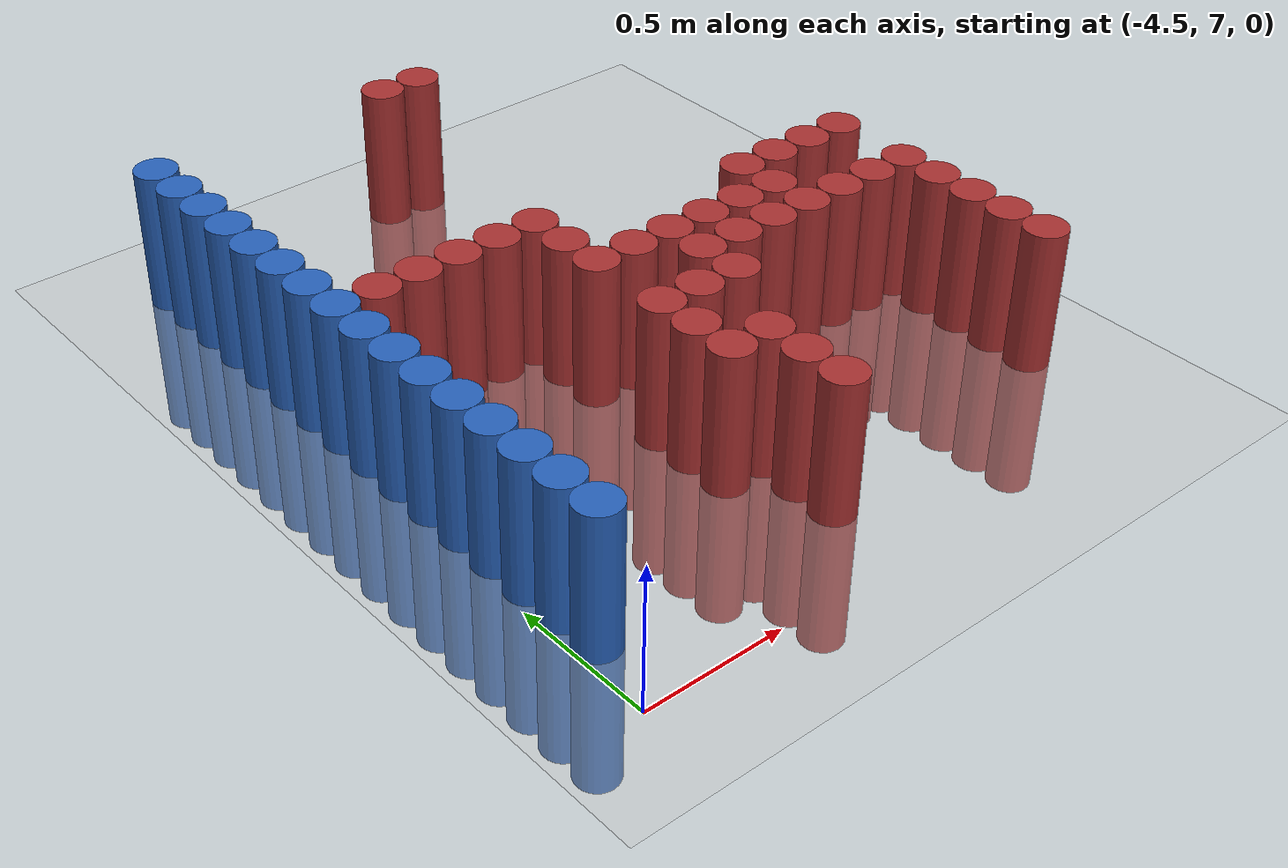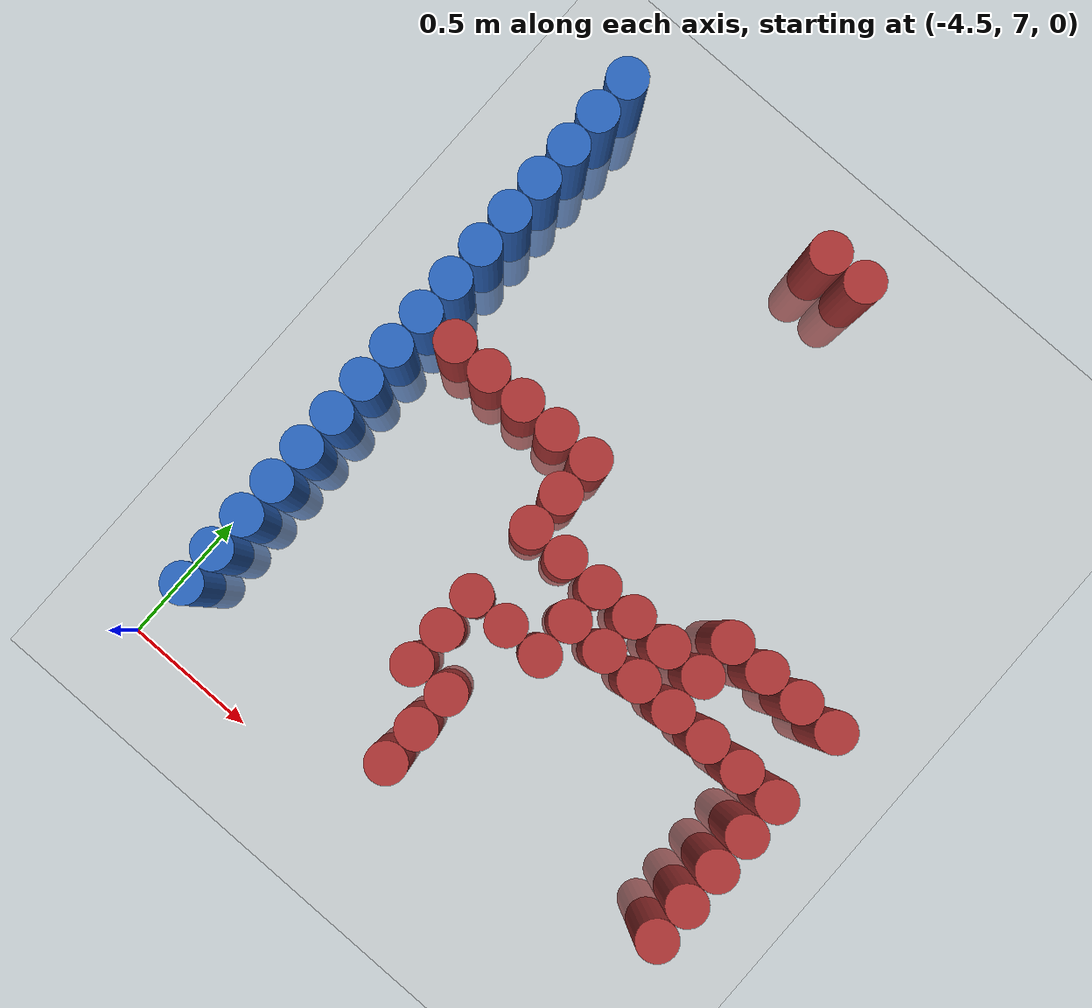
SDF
<sdf version="1.6">
 <world name="default">
  <model name="ground_plane">
   <static>1</static>
   <link name="link">
    <collision name="collision">
     <geometry><plane><normal>0 0 1</normal><size>100 100</size></plane></geometry>
     <surface><friction><ode><mu>100</mu><mu2>50</mu2></ode></friction></surface>
    </collision>
    <visual name="visual">
     <cast_shadows>0</cast_shadows>
     <geometry><plane><normal>0 0 1</normal><size>100 100</size></plane></geometry>
     <material>
      <script><uri>file://media/materials/scripts/gazebo.material</uri><name>Gazebo/Grey</name></script>
     </material>
    </visual>
   </link>
  </model>
  <model name="unit_cylinder_110">
   <static>1</static>
   <pose>-4.425000 7.275000 0.000000 0.000000 0.000000 0.000000</pose>
   <link name="link">
    <inertial>
     <mass>1</mass>
     <inertia><ixx>0.145833</ixx><ixy>0</ixy><ixz>0</ixz><iyy>0.145833</iyy><iyz>0</iyz><izz>0.125</izz></inertia>
    </inertial>
    <collision name="collision">
     <geometry><cylinder><radius>0.075000</radius><length>1</length></cylinder></geometry>
    </collision>
    <visual name="visual">
     <geometry><cylinder><radius>0.075000</radius><length>1</length></cylinder></geometry>
     <material>
      <ambient>0.152000 0.379000 0.720000 1</ambient>
      <diffuse>0.152000 0.379000 0.720000 1</diffuse>
     </material>
     <material>
      <script><name>Gazebo/Grey</name><uri>file://media/materials/scripts/gazebo.material</uri></script>
     </material>
    </visual>
   </link>
  </model>
  <model name="unit_cylinder_111">
   <static>1</static>
   <pose>-4.425000 7.425000 0.000000 0.000000 0.000000 0.000000</pose>
   <link name="link">
    <inertial>
     <mass>1</mass>
     <inertia><ixx>0.145833</ixx><ixy>0</ixy><ixz>0</ixz><iyy>0.145833</iyy><iyz>0</iyz><izz>0.125</izz></inertia>
    </inertial>
    <collision name="collision">
     <geometry><cylinder><radius>0.075000</radius><length>1</length></cylinder></geometry>
    </collision>
    <visual name="visual">
     <geometry><cylinder><radius>0.075000</radius><length>1</length></cylinder></geometry>
     <material>
      <ambient>0.152000 0.379000 0.720000 1</ambient>
      <diffuse>0.152000 0.379000 0.720000 1</diffuse>
     </material>
     <material>
      <script><name>Gazebo/Grey</name><uri>file://media/materials/scripts/gazebo.material</uri></script>
     </material>
    </visual>
   </link>
  </model>
  <model name="unit_cylinder_112">
   <static>1</static>
   <pose>-4.425000 7.575000 0.000000 0.000000 0.000000 0.000000</pose>
   <link name="link">
    <inertial>
     <mass>1</mass>
     <inertia><ixx>0.145833</ixx><ixy>0</ixy><ixz>0</ixz><iyy>0.145833</iyy><iyz>0</iyz><izz>0.125</izz></inertia>
    </inertial>
    <collision name="collision">
     <geometry><cylinder><radius>0.075000</radius><length>1</length></cylinder></geometry>
    </collision>
    <visual name="visual">
     <geometry><cylinder><radius>0.075000</radius><length>1</length></cylinder></geometry>
     <material>
      <ambient>0.152000 0.379000 0.720000 1</ambient>
      <diffuse>0.152000 0.379000 0.720000 1</diffuse>
     </material>
     <material>
      <script><name>Gazebo/Grey</name><uri>file://media/materials/scripts/gazebo.material</uri></script>
     </material>
    </visual>
   </link>
  </model>
  <model name="unit_cylinder_113">
   <static>1</static>
   <pose>-4.425000 7.725000 0.000000 0.000000 0.000000 0.000000</pose>
   <link name="link">
    <inertial>
     <mass>1</mass>
     <inertia><ixx>0.145833</ixx><ixy>0</ixy><ixz>0</ixz><iyy>0.145833</iyy><iyz>0</iyz><izz>0.125</izz></inertia>
    </inertial>
    <collision name="collision">
     <geometry><cylinder><radius>0.075000</radius><length>1</length></cylinder></geometry>
    </collision>
    <visual name="visual">
     <geometry><cylinder><radius>0.075000</radius><length>1</length></cylinder></geometry>
     <material>
      <ambient>0.152000 0.379000 0.720000 1</ambient>
      <diffuse>0.152000 0.379000 0.720000 1</diffuse>
     </material>
     <material>
      <script><name>Gazebo/Grey</name><uri>file://media/materials/scripts/gazebo.material</uri></script>
     </material>
    </visual>
   </link>
  </model>
  <model name="unit_cylinder_114">
   <static>1</static>
   <pose>-4.425000 7.875000 0.000000 0.000000 0.000000 0.000000</pose>
   <link name="link">
    <inertial>
     <mass>1</mass>
     <inertia><ixx>0.145833</ixx><ixy>0</ixy><ixz>0</ixz><iyy>0.145833</iyy><iyz>0</iyz><izz>0.125</izz></inertia>
    </inertial>
    <collision name="collision">
     <geometry><cylinder><radius>0.075000</radius><length>1</length></cylinder></geometry>
    </collision>
    <visual name="visual">
     <geometry><cylinder><radius>0.075000</radius><length>1</length></cylinder></geometry>
     <material>
      <ambient>0.152000 0.379000 0.720000 1</ambient>
      <diffuse>0.152000 0.379000 0.720000 1</diffuse>
     </material>
     <material>
      <script><name>Gazebo/Grey</name><uri>file://media/materials/scripts/gazebo.material</uri></script>
     </material>
    </visual>
   </link>
  </model>
  <model name="unit_cylinder_115">
   <static>1</static>
   <pose>-4.425000 8.025000 0.000000 0.000000 0.000000 0.000000</pose>
   <link name="link">
    <inertial>
     <mass>1</mass>
     <inertia><ixx>0.145833</ixx><ixy>0</ixy><ixz>0</ixz><iyy>0.145833</iyy><iyz>0</iyz><izz>0.125</izz></inertia>
    </inertial>
    <collision name="collision">
     <geometry><cylinder><radius>0.075000</radius><length>1</length></cylinder></geometry>
    </collision>
    <visual name="visual">
     <geometry><cylinder><radius>0.075000</radius><length>1</length></cylinder></geometry>
     <material>
      <ambient>0.152000 0.379000 0.720000 1</ambient>
      <diffuse>0.152000 0.379000 0.720000 1</diffuse>
     </material>
     <material>
      <script><name>Gazebo/Grey</name><uri>file://media/materials/scripts/gazebo.material</uri></script>
     </material>
    </visual>
   </link>
  </model>
  <model name="unit_cylinder_116">
   <static>1</static>
   <pose>-4.425000 8.175000 0.000000 0.000000 0.000000 0.000000</pose>
   <link name="link">
    <inertial>
     <mass>1</mass>
     <inertia><ixx>0.145833</ixx><ixy>0</ixy><ixz>0</ixz><iyy>0.145833</iyy><iyz>0</iyz><izz>0.125</izz></inertia>
    </inertial>
    <collision name="collision">
     <geometry><cylinder><radius>0.075000</radius><length>1</length></cylinder></geometry>
    </collision>
    <visual name="visual">
     <geometry><cylinder><radius>0.075000</radius><length>1</length></cylinder></geometry>
     <material>
      <ambient>0.152000 0.379000 0.720000 1</ambient>
      <diffuse>0.152000 0.379000 0.720000 1</diffuse>
     </material>
     <material>
      <script><name>Gazebo/Grey</name><uri>file://media/materials/scripts/gazebo.material</uri></script>
     </material>
    </visual>
   </link>
  </model>
  <model name="unit_cylinder_117">
   <static>1</static>
   <pose>-4.425000 8.325000 0.000000 0.000000 0.000000 0.000000</pose>
   <link name="link">
    <inertial>
     <mass>1</mass>
     <inertia><ixx>0.145833</ixx><ixy>0</ixy><ixz>0</ixz><iyy>0.145833</iyy><iyz>0</iyz><izz>0.125</izz></inertia>
    </inertial>
    <collision name="collision">
     <geometry><cylinder><radius>0.075000</radius><length>1</length></cylinder></geometry>
    </collision>
    <visual name="visual">
     <geometry><cylinder><radius>0.075000</radius><length>1</length></cylinder></geometry>
     <material>
      <ambient>0.152000 0.379000 0.720000 1</ambient>
      <diffuse>0.152000 0.379000 0.720000 1</diffuse>
     </material>
     <material>
      <script><name>Gazebo/Grey</name><uri>file://media/materials/scripts/gazebo.material</uri></script>
     </material>
    </visual>
   </link>
  </model>
  <model name="unit_cylinder_118">
   <static>1</static>
   <pose>-4.425000 8.475000 0.000000 0.000000 0.000000 0.000000</pose>
   <link name="link">
    <inertial>
     <mass>1</mass>
     <inertia><ixx>0.145833</ixx><ixy>0</ixy><ixz>0</ixz><iyy>0.145833</iyy><iyz>0</iyz><izz>0.125</izz></inertia>
    </inertial>
    <collision name="collision">
     <geometry><cylinder><radius>0.075000</radius><length>1</length></cylinder></geometry>
    </collision>
    <visual name="visual">
     <geometry><cylinder><radius>0.075000</radius><length>1</length></cylinder></geometry>
     <material>
      <ambient>0.152000 0.379000 0.720000 1</ambient>
      <diffuse>0.152000 0.379000 0.720000 1</diffuse>
     </material>
     <material>
      <script><name>Gazebo/Grey</name><uri>file://media/materials/scripts/gazebo.material</uri></script>
     </material>
    </visual>
   </link>
  </model>
  <model name="unit_cylinder_119">
   <static>1</static>
   <pose>-4.425000 8.625000 0.000000 0.000000 0.000000 0.000000</pose>
   <link name="link">
    <inertial>
     <mass>1</mass>
     <inertia><ixx>0.145833</ixx><ixy>0</ixy><ixz>0</ixz><iyy>0.145833</iyy><iyz>0</iyz><izz>0.125</izz></inertia>
    </inertial>
    <collision name="collision">
     <geometry><cylinder><radius>0.075000</radius><length>1</length></cylinder></geometry>
    </collision>
    <visual name="visual">
     <geometry><cylinder><radius>0.075000</radius><length>1</length></cylinder></geometry>
     <material>
      <ambient>0.152000 0.379000 0.720000 1</ambient>
      <diffuse>0.152000 0.379000 0.720000 1</diffuse>
     </material>
     <material>
      <script><name>Gazebo/Grey</name><uri>file://media/materials/scripts/gazebo.material</uri></script>
     </material>
    </visual>
   </link>
  </model>
  <model name="unit_cylinder_120">
   <static>1</static>
   <pose>-4.425000 8.775000 0.000000 0.000000 0.000000 0.000000</pose>
   <link name="link">
    <inertial>
     <mass>1</mass>
     <inertia><ixx>0.145833</ixx><ixy>0</ixy><ixz>0</ixz><iyy>0.145833</iyy><iyz>0</iyz><izz>0.125</izz></inertia>
    </inertial>
    <collision name="collision">
     <geometry><cylinder><radius>0.075000</radius><length>1</length></cylinder></geometry>
    </collision>
    <visual name="visual">
     <geometry><cylinder><radius>0.075000</radius><length>1</length></cylinder></geometry>
     <material>
      <ambient>0.152000 0.379000 0.720000 1</ambient>
      <diffuse>0.152000 0.379000 0.720000 1</diffuse>
     </material>
     <material>
      <script><name>Gazebo/Grey</name><uri>file://media/materials/scripts/gazebo.material</uri></script>
     </material>
    </visual>
   </link>
  </model>
  <model name="unit_cylinder_121">
   <static>1</static>
   <pose>-4.425000 8.925000 0.000000 0.000000 0.000000 0.000000</pose>
   <link name="link">
    <inertial>
     <mass>1</mass>
     <inertia><ixx>0.145833</ixx><ixy>0</ixy><ixz>0</ixz><iyy>0.145833</iyy><iyz>0</iyz><izz>0.125</izz></inertia>
    </inertial>
    <collision name="collision">
     <geometry><cylinder><radius>0.075000</radius><length>1</length></cylinder></geometry>
    </collision>
    <visual name="visual">
     <geometry><cylinder><radius>0.075000</radius><length>1</length></cylinder></geometry>
     <material>
      <ambient>0.152000 0.379000 0.720000 1</ambient>
      <diffuse>0.152000 0.379000 0.720000 1</diffuse>
     </material>
     <material>
      <script><name>Gazebo/Grey</name><uri>file://media/materials/scripts/gazebo.material</uri></script>
     </material>
    </visual>
   </link>
  </model>
  <model name="unit_cylinder_122">
   <static>1</static>
   <pose>-4.425000 9.075000 0.000000 0.000000 0.000000 0.000000</pose>
   <link name="link">
    <inertial>
     <mass>1</mass>
     <inertia><ixx>0.145833</ixx><ixy>0</ixy><ixz>0</ixz><iyy>0.145833</iyy><iyz>0</iyz><izz>0.125</izz></inertia>
    </inertial>
    <collision name="collision">
     <geometry><cylinder><radius>0.075000</radius><length>1</length></cylinder></geometry>
    </collision>
    <visual name="visual">
     <geometry><cylinder><radius>0.075000</radius><length>1</length></cylinder></geometry>
     <material>
      <ambient>0.152000 0.379000 0.720000 1</ambient>
      <diffuse>0.152000 0.379000 0.720000 1</diffuse>
     </material>
     <material>
      <script><name>Gazebo/Grey</name><uri>file://media/materials/scripts/gazebo.material</uri></script>
     </material>
    </visual>
   </link>
  </model>
  <model name="unit_cylinder_123">
   <static>1</static>
   <pose>-4.425000 9.225000 0.000000 0.000000 0.000000 0.000000</pose>
   <link name="link">
    <inertial>
     <mass>1</mass>
     <inertia><ixx>0.145833</ixx><ixy>0</ixy><ixz>0</ixz><iyy>0.145833</iyy><iyz>0</iyz><izz>0.125</izz></inertia>
    </inertial>
    <collision name="collision">
     <geometry><cylinder><radius>0.075000</radius><length>1</length></cylinder></geometry>
    </collision>
    <visual name="visual">
     <geometry><cylinder><radius>0.075000</radius><length>1</length></cylinder></geometry>
     <material>
      <ambient>0.152000 0.379000 0.720000 1</ambient>
      <diffuse>0.152000 0.379000 0.720000 1</diffuse>
     </material>
     <material>
      <script><name>Gazebo/Grey</name><uri>file://media/materials/scripts/gazebo.material</uri></script>
     </material>
    </visual>
   </link>
  </model>
  <model name="unit_cylinder_124">
   <static>1</static>
   <pose>-4.425000 9.375000 0.000000 0.000000 0.000000 0.000000</pose>
   <link name="link">
    <inertial>
     <mass>1</mass>
     <inertia><ixx>0.145833</ixx><ixy>0</ixy><ixz>0</ixz><iyy>0.145833</iyy><iyz>0</iyz><izz>0.125</izz></inertia>
    </inertial>
    <collision name="collision">
     <geometry><cylinder><radius>0.075000</radius><length>1</length></cylinder></geometry>
    </collision>
    <visual name="visual">
     <geometry><cylinder><radius>0.075000</radius><length>1</length></cylinder></geometry>
     <material>
      <ambient>0.152000 0.379000 0.720000 1</ambient>
      <diffuse>0.152000 0.379000 0.720000 1</diffuse>
     </material>
     <material>
      <script><name>Gazebo/Grey</name><uri>file://media/materials/scripts/gazebo.material</uri></script>
     </material>
    </visual>
   </link>
  </model>
  <model name="unit_cylinder_125">
   <static>1</static>
   <pose>-4.425000 9.525000 0.000000 0.000000 0.000000 0.000000</pose>
   <link name="link">
    <inertial>
     <mass>1</mass>
     <inertia><ixx>0.145833</ixx><ixy>0</ixy><ixz>0</ixz><iyy>0.145833</iyy><iyz>0</iyz><izz>0.125</izz></inertia>
    </inertial>
    <collision name="collision">
     <geometry><cylinder><radius>0.075000</radius><length>1</length></cylinder></geometry>
    </collision>
    <visual name="visual">
     <geometry><cylinder><radius>0.075000</radius><length>1</length></cylinder></geometry>
     <material>
      <ambient>0.152000 0.379000 0.720000 1</ambient>
      <diffuse>0.152000 0.379000 0.720000 1</diffuse>
     </material>
     <material>
      <script><name>Gazebo/Grey</name><uri>file://media/materials/scripts/gazebo.material</uri></script>
     </material>
    </visual>
   </link>
  </model>
  <model name="unit_cylinder_127">
   <static>1</static>
   <pose>-4.275000 8.475000 0.000000 0.000000 0.000000 0.000000</pose>
   <link name="link">
    <inertial>
     <mass>1</mass>
     <inertia><ixx>0.145833</ixx><ixy>0</ixy><ixz>0</ixz><iyy>0.145833</iyy><iyz>0</iyz><izz>0.125</izz></inertia>
    </inertial>
    <collision name="collision">
     <geometry><cylinder><radius>0.075000</radius><length>1</length></cylinder></geometry>
    </collision>
    <visual name="visual">
     <geometry><cylinder><radius>0.075000</radius><length>1</length></cylinder></geometry>
     <material>
      <ambient>0.648000 0.192000 0.192000 1</ambient>
      <diffuse>0.648000 0.192000 0.192000 1</diffuse>
     </material>
     <material>
      <script><name>Gazebo/Grey</name><uri>file://media/materials/scripts/gazebo.material</uri></script>
     </material>
    </visual>
   </link>
  </model>
  <model name="unit_cylinder_129">
   <static>1</static>
   <pose>-4.125000 8.475000 0.000000 0.000000 0.000000 0.000000</pose>
   <link name="link">
    <inertial>
     <mass>1</mass>
     <inertia><ixx>0.145833</ixx><ixy>0</ixy><ixz>0</ixz><iyy>0.145833</iyy><iyz>0</iyz><izz>0.125</izz></inertia>
    </inertial>
    <collision name="collision">
     <geometry><cylinder><radius>0.075000</radius><length>1</length></cylinder></geometry>
    </collision>
    <visual name="visual">
     <geometry><cylinder><radius>0.075000</radius><length>1</length></cylinder></geometry>
     <material>
      <ambient>0.648000 0.192000 0.192000 1</ambient>
      <diffuse>0.648000 0.192000 0.192000 1</diffuse>
     </material>
     <material>
      <script><name>Gazebo/Grey</name><uri>file://media/materials/scripts/gazebo.material</uri></script>
     </material>
    </visual>
   </link>
  </model>
  <model name="unit_cylinder_131">
   <static>1</static>
   <pose>-3.975000 8.475000 0.000000 0.000000 0.000000 0.000000</pose>
   <link name="link">
    <inertial>
     <mass>1</mass>
     <inertia><ixx>0.145833</ixx><ixy>0</ixy><ixz>0</ixz><iyy>0.145833</iyy><iyz>0</iyz><izz>0.125</izz></inertia>
    </inertial>
    <collision name="collision">
     <geometry><cylinder><radius>0.075000</radius><length>1</length></cylinder></geometry>
    </collision>
    <visual name="visual">
     <geometry><cylinder><radius>0.075000</radius><length>1</length></cylinder></geometry>
     <material>
      <ambient>0.648000 0.192000 0.192000 1</ambient>
      <diffuse>0.648000 0.192000 0.192000 1</diffuse>
     </material>
     <material>
      <script><name>Gazebo/Grey</name><uri>file://media/materials/scripts/gazebo.material</uri></script>
     </material>
    </visual>
   </link>
  </model>
  <model name="unit_cylinder_133">
   <static>1</static>
   <pose>-3.825000 8.475000 0.000000 0.000000 0.000000 0.000000</pose>
   <link name="link">
    <inertial>
     <mass>1</mass>
     <inertia><ixx>0.145833</ixx><ixy>0</ixy><ixz>0</ixz><iyy>0.145833</iyy><iyz>0</iyz><izz>0.125</izz></inertia>
    </inertial>
    <collision name="collision">
     <geometry><cylinder><radius>0.075000</radius><length>1</length></cylinder></geometry>
    </collision>
    <visual name="visual">
     <geometry><cylinder><radius>0.075000</radius><length>1</length></cylinder></geometry>
     <material>
      <ambient>0.648000 0.192000 0.192000 1</ambient>
      <diffuse>0.648000 0.192000 0.192000 1</diffuse>
     </material>
     <material>
      <script><name>Gazebo/Grey</name><uri>file://media/materials/scripts/gazebo.material</uri></script>
     </material>
    </visual>
   </link>
  </model>
  <model name="unit_cylinder_135">
   <static>1</static>
   <pose>-3.675000 7.575000 0.000000 0.000000 0.000000 0.000000</pose>
   <link name="link">
    <inertial>
     <mass>1</mass>
     <inertia><ixx>0.145833</ixx><ixy>0</ixy><ixz>0</ixz><iyy>0.145833</iyy><iyz>0</iyz><izz>0.125</izz></inertia>
    </inertial>
    <collision name="collision">
     <geometry><cylinder><radius>0.075000</radius><length>1</length></cylinder></geometry>
    </collision>
    <visual name="visual">
     <geometry><cylinder><radius>0.075000</radius><length>1</length></cylinder></geometry>
     <material>
      <ambient>0.648000 0.192000 0.192000 1</ambient>
      <diffuse>0.648000 0.192000 0.192000 1</diffuse>
     </material>
     <material>
      <script><name>Gazebo/Grey</name><uri>file://media/materials/scripts/gazebo.material</uri></script>
     </material>
    </visual>
   </link>
  </model>
  <model name="unit_cylinder_136">
   <static>1</static>
   <pose>-3.675000 7.725000 0.000000 0.000000 0.000000 0.000000</pose>
   <link name="link">
    <inertial>
     <mass>1</mass>
     <inertia><ixx>0.145833</ixx><ixy>0</ixy><ixz>0</ixz><iyy>0.145833</iyy><iyz>0</iyz><izz>0.125</izz></inertia>
    </inertial>
    <collision name="collision">
     <geometry><cylinder><radius>0.075000</radius><length>1</length></cylinder></geometry>
    </collision>
    <visual name="visual">
     <geometry><cylinder><radius>0.075000</radius><length>1</length></cylinder></geometry>
     <material>
      <ambient>0.648000 0.192000 0.192000 1</ambient>
      <diffuse>0.648000 0.192000 0.192000 1</diffuse>
     </material>
     <material>
      <script><name>Gazebo/Grey</name><uri>file://media/materials/scripts/gazebo.material</uri></script>
     </material>
    </visual>
   </link>
  </model>
  <model name="unit_cylinder_137">
   <static>1</static>
   <pose>-3.675000 7.875000 0.000000 0.000000 0.000000 0.000000</pose>
   <link name="link">
    <inertial>
     <mass>1</mass>
     <inertia><ixx>0.145833</ixx><ixy>0</ixy><ixz>0</ixz><iyy>0.145833</iyy><iyz>0</iyz><izz>0.125</izz></inertia>
    </inertial>
    <collision name="collision">
     <geometry><cylinder><radius>0.075000</radius><length>1</length></cylinder></geometry>
    </collision>
    <visual name="visual">
     <geometry><cylinder><radius>0.075000</radius><length>1</length></cylinder></geometry>
     <material>
      <ambient>0.648000 0.192000 0.192000 1</ambient>
      <diffuse>0.648000 0.192000 0.192000 1</diffuse>
     </material>
     <material>
      <script><name>Gazebo/Grey</name><uri>file://media/materials/scripts/gazebo.material</uri></script>
     </material>
    </visual>
   </link>
  </model>
  <model name="unit_cylinder_138">
   <static>1</static>
   <pose>-3.675000 8.175000 0.000000 0.000000 0.000000 0.000000</pose>
   <link name="link">
    <inertial>
     <mass>1</mass>
     <inertia><ixx>0.145833</ixx><ixy>0</ixy><ixz>0</ixz><iyy>0.145833</iyy><iyz>0</iyz><izz>0.125</izz></inertia>
    </inertial>
    <collision name="collision">
     <geometry><cylinder><radius>0.075000</radius><length>1</length></cylinder></geometry>
    </collision>
    <visual name="visual">
     <geometry><cylinder><radius>0.075000</radius><length>1</length></cylinder></geometry>
     <material>
      <ambient>0.648000 0.192000 0.192000 1</ambient>
      <diffuse>0.648000 0.192000 0.192000 1</diffuse>
     </material>
     <material>
      <script><name>Gazebo/Grey</name><uri>file://media/materials/scripts/gazebo.material</uri></script>
     </material>
    </visual>
   </link>
  </model>
  <model name="unit_cylinder_139">
   <static>1</static>
   <pose>-3.675000 8.325000 0.000000 0.000000 0.000000 0.000000</pose>
   <link name="link">
    <inertial>
     <mass>1</mass>
     <inertia><ixx>0.145833</ixx><ixy>0</ixy><ixz>0</ixz><iyy>0.145833</iyy><iyz>0</iyz><izz>0.125</izz></inertia>
    </inertial>
    <collision name="collision">
     <geometry><cylinder><radius>0.075000</radius><length>1</length></cylinder></geometry>
    </collision>
    <visual name="visual">
     <geometry><cylinder><radius>0.075000</radius><length>1</length></cylinder></geometry>
     <material>
      <ambient>0.648000 0.192000 0.192000 1</ambient>
      <diffuse>0.648000 0.192000 0.192000 1</diffuse>
     </material>
     <material>
      <script><name>Gazebo/Grey</name><uri>file://media/materials/scripts/gazebo.material</uri></script>
     </material>
    </visual>
   </link>
  </model>
  <model name="unit_cylinder_140">
   <static>1</static>
   <pose>-3.675000 8.475000 0.000000 0.000000 0.000000 0.000000</pose>
   <link name="link">
    <inertial>
     <mass>1</mass>
     <inertia><ixx>0.145833</ixx><ixy>0</ixy><ixz>0</ixz><iyy>0.145833</iyy><iyz>0</iyz><izz>0.125</izz></inertia>
    </inertial>
    <collision name="collision">
     <geometry><cylinder><radius>0.075000</radius><length>1</length></cylinder></geometry>
    </collision>
    <visual name="visual">
     <geometry><cylinder><radius>0.075000</radius><length>1</length></cylinder></geometry>
     <material>
      <ambient>0.648000 0.192000 0.192000 1</ambient>
      <diffuse>0.648000 0.192000 0.192000 1</diffuse>
     </material>
     <material>
      <script><name>Gazebo/Grey</name><uri>file://media/materials/scripts/gazebo.material</uri></script>
     </material>
    </visual>
   </link>
  </model>
  <model name="unit_cylinder_144">
   <static>1</static>
   <pose>-3.525000 7.275000 0.000000 0.000000 0.000000 0.000000</pose>
   <link name="link">
    <inertial>
     <mass>1</mass>
     <inertia><ixx>0.145833</ixx><ixy>0</ixy><ixz>0</ixz><iyy>0.145833</iyy><iyz>0</iyz><izz>0.125</izz></inertia>
    </inertial>
    <collision name="collision">
     <geometry><cylinder><radius>0.075000</radius><length>1</length></cylinder></geometry>
    </collision>
    <visual name="visual">
     <geometry><cylinder><radius>0.075000</radius><length>1</length></cylinder></geometry>
     <material>
      <ambient>0.648000 0.192000 0.192000 1</ambient>
      <diffuse>0.648000 0.192000 0.192000 1</diffuse>
     </material>
     <material>
      <script><name>Gazebo/Grey</name><uri>file://media/materials/scripts/gazebo.material</uri></script>
     </material>
    </visual>
   </link>
  </model>
  <model name="unit_cylinder_145">
   <static>1</static>
   <pose>-3.525000 7.425000 0.000000 0.000000 0.000000 0.000000</pose>
   <link name="link">
    <inertial>
     <mass>1</mass>
     <inertia><ixx>0.145833</ixx><ixy>0</ixy><ixz>0</ixz><iyy>0.145833</iyy><iyz>0</iyz><izz>0.125</izz></inertia>
    </inertial>
    <collision name="collision">
     <geometry><cylinder><radius>0.075000</radius><length>1</length></cylinder></geometry>
    </collision>
    <visual name="visual">
     <geometry><cylinder><radius>0.075000</radius><length>1</length></cylinder></geometry>
     <material>
      <ambient>0.648000 0.192000 0.192000 1</ambient>
      <diffuse>0.648000 0.192000 0.192000 1</diffuse>
     </material>
     <material>
      <script><name>Gazebo/Grey</name><uri>file://media/materials/scripts/gazebo.material</uri></script>
     </material>
    </visual>
   </link>
  </model>
  <model name="unit_cylinder_146">
   <static>1</static>
   <pose>-3.525000 7.575000 0.000000 0.000000 0.000000 0.000000</pose>
   <link name="link">
    <inertial>
     <mass>1</mass>
     <inertia><ixx>0.145833</ixx><ixy>0</ixy><ixz>0</ixz><iyy>0.145833</iyy><iyz>0</iyz><izz>0.125</izz></inertia>
    </inertial>
    <collision name="collision">
     <geometry><cylinder><radius>0.075000</radius><length>1</length></cylinder></geometry>
    </collision>
    <visual name="visual">
     <geometry><cylinder><radius>0.075000</radius><length>1</length></cylinder></geometry>
     <material>
      <ambient>0.648000 0.192000 0.192000 1</ambient>
      <diffuse>0.648000 0.192000 0.192000 1</diffuse>
     </material>
     <material>
      <script><name>Gazebo/Grey</name><uri>file://media/materials/scripts/gazebo.material</uri></script>
     </material>
    </visual>
   </link>
  </model>
  <model name="unit_cylinder_147">
   <static>1</static>
   <pose>-3.525000 7.875000 0.000000 0.000000 0.000000 0.000000</pose>
   <link name="link">
    <inertial>
     <mass>1</mass>
     <inertia><ixx>0.145833</ixx><ixy>0</ixy><ixz>0</ixz><iyy>0.145833</iyy><iyz>0</iyz><izz>0.125</izz></inertia>
    </inertial>
    <collision name="collision">
     <geometry><cylinder><radius>0.075000</radius><length>1</length></cylinder></geometry>
    </collision>
    <visual name="visual">
     <geometry><cylinder><radius>0.075000</radius><length>1</length></cylinder></geometry>
     <material>
      <ambient>0.648000 0.192000 0.192000 1</ambient>
      <diffuse>0.648000 0.192000 0.192000 1</diffuse>
     </material>
     <material>
      <script><name>Gazebo/Grey</name><uri>file://media/materials/scripts/gazebo.material</uri></script>
     </material>
    </visual>
   </link>
  </model>
  <model name="unit_cylinder_148">
   <static>1</static>
   <pose>-3.525000 8.175000 0.000000 0.000000 0.000000 0.000000</pose>
   <link name="link">
    <inertial>
     <mass>1</mass>
     <inertia><ixx>0.145833</ixx><ixy>0</ixy><ixz>0</ixz><iyy>0.145833</iyy><iyz>0</iyz><izz>0.125</izz></inertia>
    </inertial>
    <collision name="collision">
     <geometry><cylinder><radius>0.075000</radius><length>1</length></cylinder></geometry>
    </collision>
    <visual name="visual">
     <geometry><cylinder><radius>0.075000</radius><length>1</length></cylinder></geometry>
     <material>
      <ambient>0.648000 0.192000 0.192000 1</ambient>
      <diffuse>0.648000 0.192000 0.192000 1</diffuse>
     </material>
     <material>
      <script><name>Gazebo/Grey</name><uri>file://media/materials/scripts/gazebo.material</uri></script>
     </material>
    </visual>
   </link>
  </model>
  <model name="unit_cylinder_149">
   <static>1</static>
   <pose>-3.525000 9.525000 0.000000 0.000000 0.000000 0.000000</pose>
   <link name="link">
    <inertial>
     <mass>1</mass>
     <inertia><ixx>0.145833</ixx><ixy>0</ixy><ixz>0</ixz><iyy>0.145833</iyy><iyz>0</iyz><izz>0.125</izz></inertia>
    </inertial>
    <collision name="collision">
     <geometry><cylinder><radius>0.075000</radius><length>1</length></cylinder></geometry>
    </collision>
    <visual name="visual">
     <geometry><cylinder><radius>0.075000</radius><length>1</length></cylinder></geometry>
     <material>
      <ambient>0.648000 0.192000 0.192000 1</ambient>
      <diffuse>0.648000 0.192000 0.192000 1</diffuse>
     </material>
     <material>
      <script><name>Gazebo/Grey</name><uri>file://media/materials/scripts/gazebo.material</uri></script>
     </material>
    </visual>
   </link>
  </model>
  <model name="unit_cylinder_155">
   <static>1</static>
   <pose>-3.375000 7.875000 0.000000 0.000000 0.000000 0.000000</pose>
   <link name="link">
    <inertial>
     <mass>1</mass>
     <inertia><ixx>0.145833</ixx><ixy>0</ixy><ixz>0</ixz><iyy>0.145833</iyy><iyz>0</iyz><izz>0.125</izz></inertia>
    </inertial>
    <collision name="collision">
     <geometry><cylinder><radius>0.075000</radius><length>1</length></cylinder></geometry>
    </collision>
    <visual name="visual">
     <geometry><cylinder><radius>0.075000</radius><length>1</length></cylinder></geometry>
     <material>
      <ambient>0.648000 0.192000 0.192000 1</ambient>
      <diffuse>0.648000 0.192000 0.192000 1</diffuse>
     </material>
     <material>
      <script><name>Gazebo/Grey</name><uri>file://media/materials/scripts/gazebo.material</uri></script>
     </material>
    </visual>
   </link>
  </model>
  <model name="unit_cylinder_156">
   <static>1</static>
   <pose>-3.375000 8.025000 0.000000 0.000000 0.000000 0.000000</pose>
   <link name="link">
    <inertial>
     <mass>1</mass>
     <inertia><ixx>0.145833</ixx><ixy>0</ixy><ixz>0</ixz><iyy>0.145833</iyy><iyz>0</iyz><izz>0.125</izz></inertia>
    </inertial>
    <collision name="collision">
     <geometry><cylinder><radius>0.075000</radius><length>1</length></cylinder></geometry>
    </collision>
    <visual name="visual">
     <geometry><cylinder><radius>0.075000</radius><length>1</length></cylinder></geometry>
     <material>
      <ambient>0.648000 0.192000 0.192000 1</ambient>
      <diffuse>0.648000 0.192000 0.192000 1</diffuse>
     </material>
     <material>
      <script><name>Gazebo/Grey</name><uri>file://media/materials/scripts/gazebo.material</uri></script>
     </material>
    </visual>
   </link>
  </model>
  <model name="unit_cylinder_157">
   <static>1</static>
   <pose>-3.375000 8.175000 0.000000 0.000000 0.000000 0.000000</pose>
   <link name="link">
    <inertial>
     <mass>1</mass>
     <inertia><ixx>0.145833</ixx><ixy>0</ixy><ixz>0</ixz><iyy>0.145833</iyy><iyz>0</iyz><izz>0.125</izz></inertia>
    </inertial>
    <collision name="collision">
     <geometry><cylinder><radius>0.075000</radius><length>1</length></cylinder></geometry>
    </collision>
    <visual name="visual">
     <geometry><cylinder><radius>0.075000</radius><length>1</length></cylinder></geometry>
     <material>
      <ambient>0.648000 0.192000 0.192000 1</ambient>
      <diffuse>0.648000 0.192000 0.192000 1</diffuse>
     </material>
     <material>
      <script><name>Gazebo/Grey</name><uri>file://media/materials/scripts/gazebo.material</uri></script>
     </material>
    </visual>
   </link>
  </model>
  <model name="unit_cylinder_158">
   <static>1</static>
   <pose>-3.375000 9.525000 0.000000 0.000000 0.000000 0.000000</pose>
   <link name="link">
    <inertial>
     <mass>1</mass>
     <inertia><ixx>0.145833</ixx><ixy>0</ixy><ixz>0</ixz><iyy>0.145833</iyy><iyz>0</iyz><izz>0.125</izz></inertia>
    </inertial>
    <collision name="collision">
     <geometry><cylinder><radius>0.075000</radius><length>1</length></cylinder></geometry>
    </collision>
    <visual name="visual">
     <geometry><cylinder><radius>0.075000</radius><length>1</length></cylinder></geometry>
     <material>
      <ambient>0.648000 0.192000 0.192000 1</ambient>
      <diffuse>0.648000 0.192000 0.192000 1</diffuse>
     </material>
     <material>
      <script><name>Gazebo/Grey</name><uri>file://media/materials/scripts/gazebo.material</uri></script>
     </material>
    </visual>
   </link>
  </model>
  <model name="unit_cylinder_165">
   <static>1</static>
   <pose>-3.225000 8.025000 0.000000 0.000000 0.000000 0.000000</pose>
   <link name="link">
    <inertial>
     <mass>1</mass>
     <inertia><ixx>0.145833</ixx><ixy>0</ixy><ixz>0</ixz><iyy>0.145833</iyy><iyz>0</iyz><izz>0.125</izz></inertia>
    </inertial>
    <collision name="collision">
     <geometry><cylinder><radius>0.075000</radius><length>1</length></cylinder></geometry>
    </collision>
    <visual name="visual">
     <geometry><cylinder><radius>0.075000</radius><length>1</length></cylinder></geometry>
     <material>
      <ambient>0.648000 0.192000 0.192000 1</ambient>
      <diffuse>0.648000 0.192000 0.192000 1</diffuse>
     </material>
     <material>
      <script><name>Gazebo/Grey</name><uri>file://media/materials/scripts/gazebo.material</uri></script>
     </material>
    </visual>
   </link>
  </model>
  <model name="unit_cylinder_166">
   <static>1</static>
   <pose>-3.225000 8.175000 0.000000 0.000000 0.000000 0.000000</pose>
   <link name="link">
    <inertial>
     <mass>1</mass>
     <inertia><ixx>0.145833</ixx><ixy>0</ixy><ixz>0</ixz><iyy>0.145833</iyy><iyz>0</iyz><izz>0.125</izz></inertia>
    </inertial>
    <collision name="collision">
     <geometry><cylinder><radius>0.075000</radius><length>1</length></cylinder></geometry>
    </collision>
    <visual name="visual">
     <geometry><cylinder><radius>0.075000</radius><length>1</length></cylinder></geometry>
     <material>
      <ambient>0.648000 0.192000 0.192000 1</ambient>
      <diffuse>0.648000 0.192000 0.192000 1</diffuse>
     </material>
     <material>
      <script><name>Gazebo/Grey</name><uri>file://media/materials/scripts/gazebo.material</uri></script>
     </material>
    </visual>
   </link>
  </model>
  <model name="unit_cylinder_172">
   <static>1</static>
   <pose>-3.075000 8.025000 0.000000 0.000000 0.000000 0.000000</pose>
   <link name="link">
    <inertial>
     <mass>1</mass>
     <inertia><ixx>0.145833</ixx><ixy>0</ixy><ixz>0</ixz><iyy>0.145833</iyy><iyz>0</iyz><izz>0.125</izz></inertia>
    </inertial>
    <collision name="collision">
     <geometry><cylinder><radius>0.075000</radius><length>1</length></cylinder></geometry>
    </collision>
    <visual name="visual">
     <geometry><cylinder><radius>0.075000</radius><length>1</length></cylinder></geometry>
     <material>
      <ambient>0.648000 0.192000 0.192000 1</ambient>
      <diffuse>0.648000 0.192000 0.192000 1</diffuse>
     </material>
     <material>
      <script><name>Gazebo/Grey</name><uri>file://media/materials/scripts/gazebo.material</uri></script>
     </material>
    </visual>
   </link>
  </model>
  <model name="unit_cylinder_173">
   <static>1</static>
   <pose>-3.075000 8.175000 0.000000 0.000000 0.000000 0.000000</pose>
   <link name="link">
    <inertial>
     <mass>1</mass>
     <inertia><ixx>0.145833</ixx><ixy>0</ixy><ixz>0</ixz><iyy>0.145833</iyy><iyz>0</iyz><izz>0.125</izz></inertia>
    </inertial>
    <collision name="collision">
     <geometry><cylinder><radius>0.075000</radius><length>1</length></cylinder></geometry>
    </collision>
    <visual name="visual">
     <geometry><cylinder><radius>0.075000</radius><length>1</length></cylinder></geometry>
     <material>
      <ambient>0.648000 0.192000 0.192000 1</ambient>
      <diffuse>0.648000 0.192000 0.192000 1</diffuse>
     </material>
     <material>
      <script><name>Gazebo/Grey</name><uri>file://media/materials/scripts/gazebo.material</uri></script>
     </material>
    </visual>
   </link>
  </model>
  <model name="unit_cylinder_177">
   <static>1</static>
   <pose>-2.925000 8.025000 0.000000 0.000000 0.000000 0.000000</pose>
   <link name="link">
    <inertial>
     <mass>1</mass>
     <inertia><ixx>0.145833</ixx><ixy>0</ixy><ixz>0</ixz><iyy>0.145833</iyy><iyz>0</iyz><izz>0.125</izz></inertia>
    </inertial>
    <collision name="collision">
     <geometry><cylinder><radius>0.075000</radius><length>1</length></cylinder></geometry>
    </collision>
    <visual name="visual">
     <geometry><cylinder><radius>0.075000</radius><length>1</length></cylinder></geometry>
     <material>
      <ambient>0.648000 0.192000 0.192000 1</ambient>
      <diffuse>0.648000 0.192000 0.192000 1</diffuse>
     </material>
     <material>
      <script><name>Gazebo/Grey</name><uri>file://media/materials/scripts/gazebo.material</uri></script>
     </material>
    </visual>
   </link>
  </model>
  <model name="unit_cylinder_178">
   <static>1</static>
   <pose>-2.925000 8.175000 0.000000 0.000000 0.000000 0.000000</pose>
   <link name="link">
    <inertial>
     <mass>1</mass>
     <inertia><ixx>0.145833</ixx><ixy>0</ixy><ixz>0</ixz><iyy>0.145833</iyy><iyz>0</iyz><izz>0.125</izz></inertia>
    </inertial>
    <collision name="collision">
     <geometry><cylinder><radius>0.075000</radius><length>1</length></cylinder></geometry>
    </collision>
    <visual name="visual">
     <geometry><cylinder><radius>0.075000</radius><length>1</length></cylinder></geometry>
     <material>
      <ambient>0.648000 0.192000 0.192000 1</ambient>
      <diffuse>0.648000 0.192000 0.192000 1</diffuse>
     </material>
     <material>
      <script><name>Gazebo/Grey</name><uri>file://media/materials/scripts/gazebo.material</uri></script>
     </material>
    </visual>
   </link>
  </model>
  <model name="unit_cylinder_179">
   <static>1</static>
   <pose>-2.925000 8.325000 0.000000 0.000000 0.000000 0.000000</pose>
   <link name="link">
    <inertial>
     <mass>1</mass>
     <inertia><ixx>0.145833</ixx><ixy>0</ixy><ixz>0</ixz><iyy>0.145833</iyy><iyz>0</iyz><izz>0.125</izz></inertia>
    </inertial>
    <collision name="collision">
     <geometry><cylinder><radius>0.075000</radius><length>1</length></cylinder></geometry>
    </collision>
    <visual name="visual">
     <geometry><cylinder><radius>0.075000</radius><length>1</length></cylinder></geometry>
     <material>
      <ambient>0.648000 0.192000 0.192000 1</ambient>
      <diffuse>0.648000 0.192000 0.192000 1</diffuse>
     </material>
     <material>
      <script><name>Gazebo/Grey</name><uri>file://media/materials/scripts/gazebo.material</uri></script>
     </material>
    </visual>
   </link>
  </model>
  <model name="unit_cylinder_180">
   <static>1</static>
   <pose>-2.775000 8.025000 0.000000 0.000000 0.000000 0.000000</pose>
   <link name="link">
    <inertial>
     <mass>1</mass>
     <inertia><ixx>0.145833</ixx><ixy>0</ixy><ixz>0</ixz><iyy>0.145833</iyy><iyz>0</iyz><izz>0.125</izz></inertia>
    </inertial>
    <collision name="collision">
     <geometry><cylinder><radius>0.075000</radius><length>1</length></cylinder></geometry>
    </collision>
    <visual name="visual">
     <geometry><cylinder><radius>0.075000</radius><length>1</length></cylinder></geometry>
     <material>
      <ambient>0.648000 0.192000 0.192000 1</ambient>
      <diffuse>0.648000 0.192000 0.192000 1</diffuse>
     </material>
     <material>
      <script><name>Gazebo/Grey</name><uri>file://media/materials/scripts/gazebo.material</uri></script>
     </material>
    </visual>
   </link>
  </model>
  <model name="unit_cylinder_181">
   <static>1</static>
   <pose>-2.775000 8.325000 0.000000 0.000000 0.000000 0.000000</pose>
   <link name="link">
    <inertial>
     <mass>1</mass>
     <inertia><ixx>0.145833</ixx><ixy>0</ixy><ixz>0</ixz><iyy>0.145833</iyy><iyz>0</iyz><izz>0.125</izz></inertia>
    </inertial>
    <collision name="collision">
     <geometry><cylinder><radius>0.075000</radius><length>1</length></cylinder></geometry>
    </collision>
    <visual name="visual">
     <geometry><cylinder><radius>0.075000</radius><length>1</length></cylinder></geometry>
     <material>
      <ambient>0.648000 0.192000 0.192000 1</ambient>
      <diffuse>0.648000 0.192000 0.192000 1</diffuse>
     </material>
     <material>
      <script><name>Gazebo/Grey</name><uri>file://media/materials/scripts/gazebo.material</uri></script>
     </material>
    </visual>
   </link>
  </model>
  <model name="unit_cylinder_182">
   <static>1</static>
   <pose>-2.625000 8.025000 0.000000 0.000000 0.000000 0.000000</pose>
   <link name="link">
    <inertial>
     <mass>1</mass>
     <inertia><ixx>0.145833</ixx><ixy>0</ixy><ixz>0</ixz><iyy>0.145833</iyy><iyz>0</iyz><izz>0.125</izz></inertia>
    </inertial>
    <collision name="collision">
     <geometry><cylinder><radius>0.075000</radius><length>1</length></cylinder></geometry>
    </collision>
    <visual name="visual">
     <geometry><cylinder><radius>0.075000</radius><length>1</length></cylinder></geometry>
     <material>
      <ambient>0.648000 0.192000 0.192000 1</ambient>
      <diffuse>0.648000 0.192000 0.192000 1</diffuse>
     </material>
     <material>
      <script><name>Gazebo/Grey</name><uri>file://media/materials/scripts/gazebo.material</uri></script>
     </material>
    </visual>
   </link>
  </model>
  <model name="unit_cylinder_183">
   <static>1</static>
   <pose>-2.625000 8.325000 0.000000 0.000000 0.000000 0.000000</pose>
   <link name="link">
    <inertial>
     <mass>1</mass>
     <inertia><ixx>0.145833</ixx><ixy>0</ixy><ixz>0</ixz><iyy>0.145833</iyy><iyz>0</iyz><izz>0.125</izz></inertia>
    </inertial>
    <collision name="collision">
     <geometry><cylinder><radius>0.075000</radius><length>1</length></cylinder></geometry>
    </collision>
    <visual name="visual">
     <geometry><cylinder><radius>0.075000</radius><length>1</length></cylinder></geometry>
     <material>
      <ambient>0.648000 0.192000 0.192000 1</ambient>
      <diffuse>0.648000 0.192000 0.192000 1</diffuse>
     </material>
     <material>
      <script><name>Gazebo/Grey</name><uri>file://media/materials/scripts/gazebo.material</uri></script>
     </material>
    </visual>
   </link>
  </model>
  <model name="unit_cylinder_184">
   <static>1</static>
   <pose>-2.475000 7.425000 0.000000 0.000000 0.000000 0.000000</pose>
   <link name="link">
    <inertial>
     <mass>1</mass>
     <inertia><ixx>0.145833</ixx><ixy>0</ixy><ixz>0</ixz><iyy>0.145833</iyy><iyz>0</iyz><izz>0.125</izz></inertia>
    </inertial>
    <collision name="collision">
     <geometry><cylinder><radius>0.075000</radius><length>1</length></cylinder></geometry>
    </collision>
    <visual name="visual">
     <geometry><cylinder><radius>0.075000</radius><length>1</length></cylinder></geometry>
     <material>
      <ambient>0.648000 0.192000 0.192000 1</ambient>
      <diffuse>0.648000 0.192000 0.192000 1</diffuse>
     </material>
     <material>
      <script><name>Gazebo/Grey</name><uri>file://media/materials/scripts/gazebo.material</uri></script>
     </material>
    </visual>
   </link>
  </model>
  <model name="unit_cylinder_185">
   <static>1</static>
   <pose>-2.475000 7.575000 0.000000 0.000000 0.000000 0.000000</pose>
   <link name="link">
    <inertial>
     <mass>1</mass>
     <inertia><ixx>0.145833</ixx><ixy>0</ixy><ixz>0</ixz><iyy>0.145833</iyy><iyz>0</iyz><izz>0.125</izz></inertia>
    </inertial>
    <collision name="collision">
     <geometry><cylinder><radius>0.075000</radius><length>1</length></cylinder></geometry>
    </collision>
    <visual name="visual">
     <geometry><cylinder><radius>0.075000</radius><length>1</length></cylinder></geometry>
     <material>
      <ambient>0.648000 0.192000 0.192000 1</ambient>
      <diffuse>0.648000 0.192000 0.192000 1</diffuse>
     </material>
     <material>
      <script><name>Gazebo/Grey</name><uri>file://media/materials/scripts/gazebo.material</uri></script>
     </material>
    </visual>
   </link>
  </model>
  <model name="unit_cylinder_186">
   <static>1</static>
   <pose>-2.475000 7.725000 0.000000 0.000000 0.000000 0.000000</pose>
   <link name="link">
    <inertial>
     <mass>1</mass>
     <inertia><ixx>0.145833</ixx><ixy>0</ixy><ixz>0</ixz><iyy>0.145833</iyy><iyz>0</iyz><izz>0.125</izz></inertia>
    </inertial>
    <collision name="collision">
     <geometry><cylinder><radius>0.075000</radius><length>1</length></cylinder></geometry>
    </collision>
    <visual name="visual">
     <geometry><cylinder><radius>0.075000</radius><length>1</length></cylinder></geometry>
     <material>
      <ambient>0.648000 0.192000 0.192000 1</ambient>
      <diffuse>0.648000 0.192000 0.192000 1</diffuse>
     </material>
     <material>
      <script><name>Gazebo/Grey</name><uri>file://media/materials/scripts/gazebo.material</uri></script>
     </material>
    </visual>
   </link>
  </model>
  <model name="unit_cylinder_187">
   <static>1</static>
   <pose>-2.475000 7.875000 0.000000 0.000000 0.000000 0.000000</pose>
   <link name="link">
    <inertial>
     <mass>1</mass>
     <inertia><ixx>0.145833</ixx><ixy>0</ixy><ixz>0</ixz><iyy>0.145833</iyy><iyz>0</iyz><izz>0.125</izz></inertia>
    </inertial>
    <collision name="collision">
     <geometry><cylinder><radius>0.075000</radius><length>1</length></cylinder></geometry>
    </collision>
    <visual name="visual">
     <geometry><cylinder><radius>0.075000</radius><length>1</length></cylinder></geometry>
     <material>
      <ambient>0.648000 0.192000 0.192000 1</ambient>
      <diffuse>0.648000 0.192000 0.192000 1</diffuse>
     </material>
     <material>
      <script><name>Gazebo/Grey</name><uri>file://media/materials/scripts/gazebo.material</uri></script>
     </material>
    </visual>
   </link>
  </model>
  <model name="unit_cylinder_188">
   <static>1</static>
   <pose>-2.475000 8.025000 0.000000 0.000000 0.000000 0.000000</pose>
   <link name="link">
    <inertial>
     <mass>1</mass>
     <inertia><ixx>0.145833</ixx><ixy>0</ixy><ixz>0</ixz><iyy>0.145833</iyy><iyz>0</iyz><izz>0.125</izz></inertia>
    </inertial>
    <collision name="collision">
     <geometry><cylinder><radius>0.075000</radius><length>1</length></cylinder></geometry>
    </collision>
    <visual name="visual">
     <geometry><cylinder><radius>0.075000</radius><length>1</length></cylinder></geometry>
     <material>
      <ambient>0.648000 0.192000 0.192000 1</ambient>
      <diffuse>0.648000 0.192000 0.192000 1</diffuse>
     </material>
     <material>
      <script><name>Gazebo/Grey</name><uri>file://media/materials/scripts/gazebo.material</uri></script>
     </material>
    </visual>
   </link>
  </model>
  <model name="unit_cylinder_189">
   <static>1</static>
   <pose>-2.475000 8.325000 0.000000 0.000000 0.000000 0.000000</pose>
   <link name="link">
    <inertial>
     <mass>1</mass>
     <inertia><ixx>0.145833</ixx><ixy>0</ixy><ixz>0</ixz><iyy>0.145833</iyy><iyz>0</iyz><izz>0.125</izz></inertia>
    </inertial>
    <collision name="collision">
     <geometry><cylinder><radius>0.075000</radius><length>1</length></cylinder></geometry>
    </collision>
    <visual name="visual">
     <geometry><cylinder><radius>0.075000</radius><length>1</length></cylinder></geometry>
     <material>
      <ambient>0.648000 0.192000 0.192000 1</ambient>
      <diffuse>0.648000 0.192000 0.192000 1</diffuse>
     </material>
     <material>
      <script><name>Gazebo/Grey</name><uri>file://media/materials/scripts/gazebo.material</uri></script>
     </material>
    </visual>
   </link>
  </model>
 </world>
</sdf>
